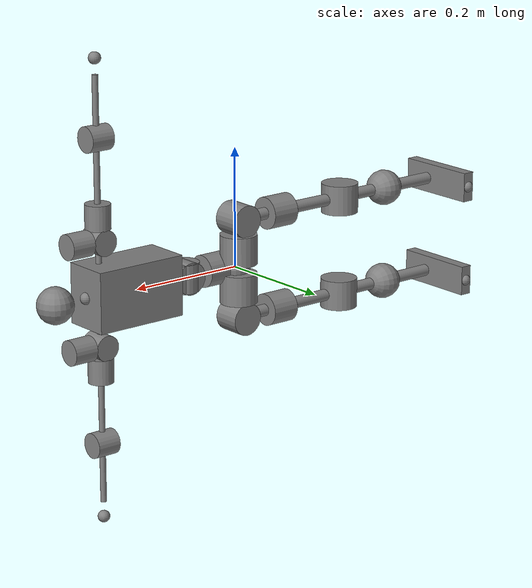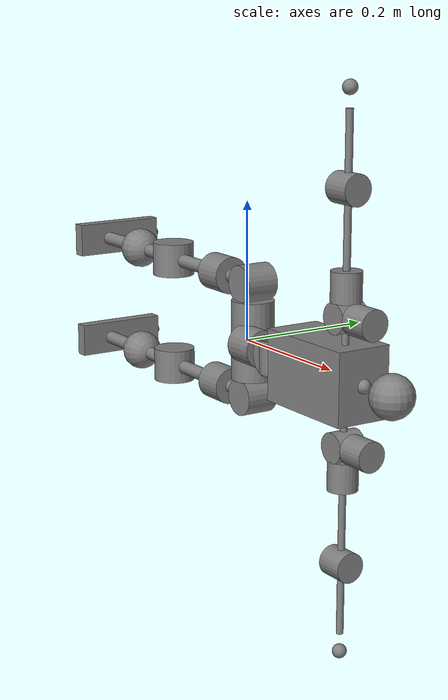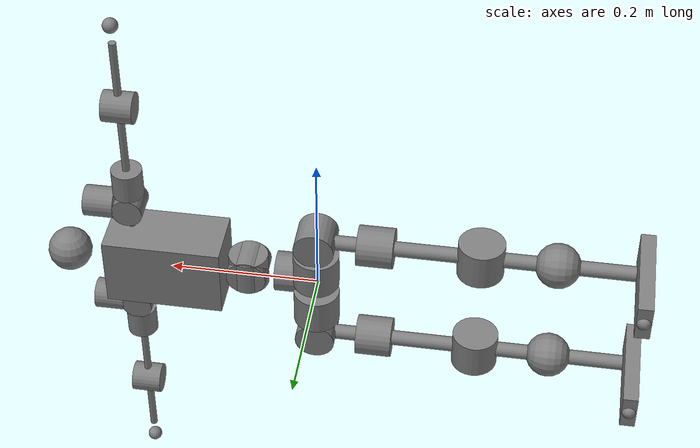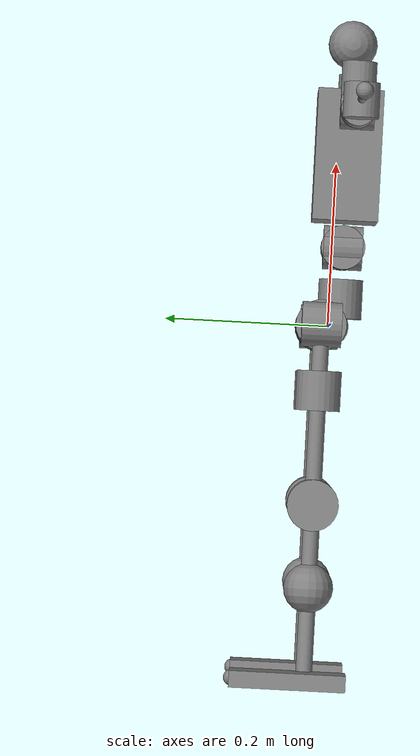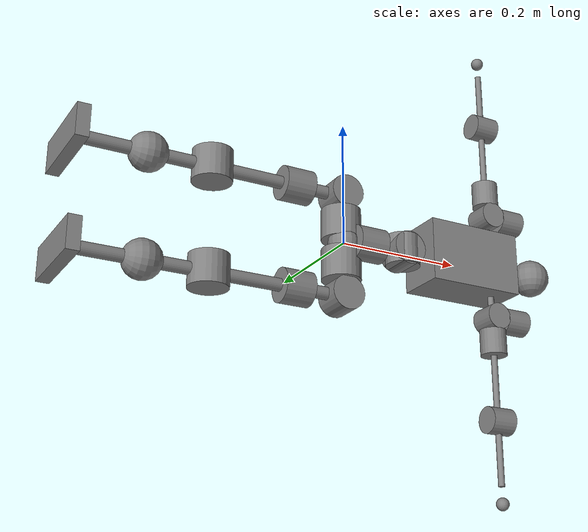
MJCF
<?xml version='1.0' encoding='utf-8'?>
<mujoco model="bvh_human_3dof_tpose">
  <compiler angle="radian" meshdir="meshes/" />
  <worldbody>
    <body name="Hips">
      <inertial pos="0 0 0" mass="0.1" diaginertia="2.5e-05 2.5e-05 2.5e-05" />
      <joint name="floating_base_joint" type="free" />
      <geom size="0.025" contype="1" conaffinity="1" group="1" density="0" name="Hips" />
      <geom size="0.025" name="Hips_geom1" />
      <geom size="0.025" name="Hips_geom2" />
      <body name="LeftUpLeg_rz" pos="0.00051729 0.0092891 0.0827425" quat="-2.32051e-08 0 0 -1">
        <inertial pos="0 0 -0.05" mass="0.5" diaginertia="0.0001922 0.0001922 0.0001922" />
        <joint name="Hips_to_LeftUpLeg_rz" pos="0 0 0" axis="0 0 1" range="-3.14159 3.14159" actuatorfrcrange="-55 55" />
        <geom size="0.031 0.025" pos="0 0 -0.05" type="cylinder" contype="1" conaffinity="1" group="1" density="0" name="LeftUpLeg_rz" />
        <geom size="0.031 0.025" pos="0 0 -0.05" type="cylinder" name="LeftUpLeg_rz_geom1" />
        <body name="LeftUpLeg_ry">
          <inertial pos="0 0 0" mass="0.4" diaginertia="0.00011664 0.00011664 0.00011664" />
          <joint name="LeftUpLeg_rz_to_LeftUpLeg_ry" pos="0 0 0" axis="0 1 0" range="-3.14159 3.14159" actuatorfrcrange="-25 25" />
          <geom size="0.027 0.024" quat="0.707107 -0.707107 0 0" type="cylinder" contype="1" conaffinity="1" group="1" density="0" name="LeftUpLeg_ry" />
          <geom size="0.027 0.024" quat="0.707107 -0.707107 0 0" type="cylinder" name="LeftUpLeg_ry_geom1" />
          <body name="LeftUpLeg" quat="-2.32051e-08 1 0 0">
            <inertial pos="0.08 0 0" mass="0.4" diaginertia="0.0016 0.0016 0.0016" />
            <joint name="LeftUpLeg_ry_to_LeftUpLeg" pos="0 0 0" axis="1 0 0" range="-3.14159 3.14159" actuatorfrcrange="-25 25" />
            <geom size="0.01 0.1" pos="0.1 0 0" quat="0.707388 0 0.706825 0" type="cylinder" contype="1" conaffinity="1" group="1" density="0" name="LeftUpLeg" />
            <geom size="0.027 0.024" pos="0.08 0 0" quat="0.707107 0 0.707107 0" type="cylinder" contype="1" conaffinity="1" group="1" density="0" name="LeftUpLeg_geom1" />
            <geom size="0.027 0.024" pos="0.08 0 0" quat="0.707107 0 0.707107 0" type="cylinder" name="LeftUpLeg_geom2" />
            <body name="LeftLeg_rz" pos="0.2175 -1e-07 1e-08">
              <inertial pos="0 0 0" mass="0.5" diaginertia="0.0001922 0.0001922 0.0001922" />
              <joint name="LeftUpLeg_to_LeftLeg_rz" pos="0 0 0" axis="0 0 1" range="-3.14159 3.14159" actuatorfrcrange="-55 55" />
              <geom size="0.031 0.025" type="cylinder" contype="1" conaffinity="1" group="1" density="0" name="LeftLeg_rz" />
              <geom size="0.031 0.025" type="cylinder" name="LeftLeg_rz_geom1" />
              <body name="LeftLeg_ry">
                <inertial pos="0 0 0" mass="0.01" diaginertia="4e-07 4e-07 4e-07" />
                <body name="LeftLeg">
                  <inertial pos="0.1 0 0" mass="0.8" diaginertia="0.0032 0.0032 0.0032" />
                  <geom size="0.01 0.1" pos="0.1 0 0" quat="0.707388 0 0.706825 0" type="cylinder" contype="1" conaffinity="1" group="1" density="0" name="LeftLeg" />
                  <geom size="0.03" pos="0.1 0 0" quat="0.707388 0 0.706825 0" contype="1" conaffinity="1" group="1" density="0" name="LeftLeg_geom1" />
                  <geom size="0.03" pos="0.1 0 0" quat="0.707388 0 0.706825 0" name="LeftLeg_geom2" />
                  <body name="LeftFoot_rz" pos="0.211861 -2e-08 1e-08" quat="0.707107 0 0 0.707107">
                    <inertial pos="0 0 0" mass="0.01" diaginertia="1.6e-06 1.6e-06 1.6e-06" />
                    <joint name="LeftLeg_to_LeftFoot_rz" pos="0 0 0" axis="0 0 1" range="-3.14159 3.14159" actuatorfrcrange="-50 50" />
                    <geom size="0.005 0.02" type="cylinder" contype="1" conaffinity="1" group="1" density="0" name="LeftFoot_rz" />
                    <body name="LeftFoot_ry">
                      <inertial pos="0 0 0" mass="0.01" diaginertia="4e-07 4e-07 4e-07" />
                      <body name="LeftFoot">
                        <inertial pos="0 0 0" mass="0.01" diaginertia="1.96e-05 1.96e-05 1.96e-05" />
                        <joint name="LeftFoot_ry_to_LeftFoot" pos="0 0 0" axis="1 0 0" range="-3.14159 3.14159" actuatorfrcrange="-50 50" />
                        <geom size="0.07 0.01 0.025" pos="0.02 0 0" type="box" contype="1" conaffinity="1" group="1" density="0" name="LeftFoot" />
                        <geom size="0.005 0.02" quat="0.707107 0 0.707107 0" type="cylinder" contype="1" conaffinity="1" group="1" density="0" name="LeftFoot_geom1" />
                        <geom size="0.07 0.01 0.025" pos="0.02 0 0" type="box" name="LeftFoot_geom2" />
                        <body name="LeftToe_rz" pos="0.0865 1e-08 3e-08">
                          <inertial pos="0 0 0" mass="0.01" diaginertia="4e-07 4e-07 4e-07" />
                          <body name="LeftToe_ry">
                            <inertial pos="0 0 0" mass="0.01" diaginertia="4e-07 4e-07 4e-07" />
                            <body name="LeftToe">
                              <inertial pos="0 0 0" mass="0.01" diaginertia="4e-07 4e-07 4e-07" />
                              <geom size="0.01" contype="1" conaffinity="1" group="1" density="0" name="LeftToe" />
                              <geom size="0.01" name="LeftToe_geom1" />
                              <body name="LeftToe_End">
                                <inertial pos="0 0 0" mass="0.01" diaginertia="4e-07 4e-07 4e-07" />
                                <geom size="0.01" contype="1" conaffinity="1" group="1" density="0" name="LeftToe_End" />
                                <geom size="0.01" name="LeftToe_End_geom1" />
                              </body>
                            </body>
                          </body>
                        </body>
                      </body>
                    </body>
                  </body>
                </body>
              </body>
            </body>
          </body>
        </body>
      </body>
      <body name="RightUpLeg_rz" pos="0.00051729 0.00928909 -0.0827425" quat="-2.32051e-08 0 0 -1">
        <inertial pos="0 0 0.05" mass="0.5" diaginertia="0.0001922 0.0001922 0.0001922" />
        <joint name="Hips_to_RightUpLeg_rz" pos="0 0 0" axis="0 0 1" range="-3.14159 3.14159" actuatorfrcrange="-100 100" />
        <geom size="0.031 0.025" pos="0 0 0.05" type="cylinder" contype="1" conaffinity="1" group="1" density="0" name="RightUpLeg_rz" />
        <geom size="0.031 0.025" pos="0 0 0.05" type="cylinder" name="RightUpLeg_rz_geom1" />
        <body name="RightUpLeg_ry">
          <inertial pos="0 0 0" mass="0.4" diaginertia="0.00011664 0.00011664 0.00011664" />
          <joint name="RightUpLeg_rz_to_RightUpLeg_ry" pos="0 0 0" axis="0 1 0" range="-3.14159 3.14159" actuatorfrcrange="-100 100" />
          <geom size="0.027 0.024" quat="0.707107 -0.707107 0 0" type="cylinder" contype="1" conaffinity="1" group="1" density="0" name="RightUpLeg_ry" />
          <geom size="0.027 0.024" quat="0.707107 -0.707107 0 0" type="cylinder" name="RightUpLeg_ry_geom1" />
          <body name="RightUpLeg" quat="-2.32051e-08 -1 0 0">
            <inertial pos="0.08 0 0" mass="0.4" diaginertia="0.0016 0.0016 0.0016" />
            <joint name="RightUpLeg_ry_to_RightUpLeg" pos="0 0 0" axis="1 0 0" range="-3.14159 3.14159" actuatorfrcrange="-100 100" />
            <geom size="0.01 0.1" pos="0.1 0 0" quat="0.707388 0 0.706825 0" type="cylinder" contype="1" conaffinity="1" group="1" density="0" name="RightUpLeg" />
            <geom size="0.027 0.024" pos="0.08 0 0" quat="0.707107 0 0.707107 0" type="cylinder" contype="1" conaffinity="1" group="1" density="0" name="RightUpLeg_geom1" />
            <geom size="0.027 0.024" pos="0.08 0 0" quat="0.707107 0 0.707107 0" type="cylinder" name="RightUpLeg_geom2" />
            <body name="RightLeg_rz" pos="0.2175 -7e-08 5e-08">
              <inertial pos="0 0 0" mass="0.5" diaginertia="0.0001922 0.0001922 0.0001922" />
              <joint name="RightUpLeg_to_RightLeg_rz" pos="0 0 0" axis="0 0 1" range="-3.14159 3.14159" actuatorfrcrange="-100 100" />
              <geom size="0.031 0.025" type="cylinder" contype="1" conaffinity="1" group="1" density="0" name="RightLeg_rz" />
              <geom size="0.031 0.025" type="cylinder" name="RightLeg_rz_geom1" />
              <body name="RightLeg_ry">
                <inertial pos="0 0 0" mass="0.01" diaginertia="4e-07 4e-07 4e-07" />
                <body name="RightLeg">
                  <inertial pos="0.1 0 0" mass="0.8" diaginertia="0.0032 0.0032 0.0032" />
                  <geom size="0.01 0.1" pos="0.1 0 0" quat="0.707388 0 0.706825 0" type="cylinder" contype="1" conaffinity="1" group="1" density="0" name="RightLeg" />
                  <geom size="0.03" pos="0.1 0 0" quat="0.707388 0 0.706825 0" contype="1" conaffinity="1" group="1" density="0" name="RightLeg_geom1" />
                  <geom size="0.03" pos="0.1 0 0" quat="0.707388 0 0.706825 0" name="RightLeg_geom2" />
                  <body name="RightFoot_rz" pos="0.211861 -4e-08 5e-08" quat="0.707107 0 0 0.707107">
                    <inertial pos="0 0 0" mass="0.01" diaginertia="1.6e-06 1.6e-06 1.6e-06" />
                    <joint name="RightLeg_to_RightFoot_rz" pos="0 0 0" axis="0 0 1" range="-3.14159 3.14159" actuatorfrcrange="-100 100" />
                    <geom size="0.005 0.02" type="cylinder" contype="1" conaffinity="1" group="1" density="0" name="RightFoot_rz" />
                    <body name="RightFoot_ry">
                      <inertial pos="0 0 0" mass="0.01" diaginertia="4e-07 4e-07 4e-07" />
                      <body name="RightFoot">
                        <inertial pos="0 0 0" mass="0.01" diaginertia="1.96e-05 1.96e-05 1.96e-05" />
                        <joint name="RightFoot_ry_to_RightFoot" pos="0 0 0" axis="1 0 0" range="-3.14159 3.14159" actuatorfrcrange="-100 100" />
                        <geom size="0.07 0.01 0.025" pos="0.02 0 0" type="box" contype="1" conaffinity="1" group="1" density="0" name="RightFoot" />
                        <geom size="0.005 0.02" quat="0.707107 0 0.707107 0" type="cylinder" contype="1" conaffinity="1" group="1" density="0" name="RightFoot_geom1" />
                        <geom size="0.07 0.01 0.025" pos="0.02 0 0" type="box" name="RightFoot_geom2" />
                        <body name="RightToe_rz" pos="0.0865 -2e-08 0">
                          <inertial pos="0 0 0" mass="0.01" diaginertia="4e-07 4e-07 4e-07" />
                          <body name="RightToe_ry">
                            <inertial pos="0 0 0" mass="0.01" diaginertia="4e-07 4e-07 4e-07" />
                            <body name="RightToe">
                              <inertial pos="0 0 0" mass="0.01" diaginertia="4e-07 4e-07 4e-07" />
                              <geom size="0.01" contype="1" conaffinity="1" group="1" density="0" name="RightToe" />
                              <geom size="0.01" name="RightToe_geom1" />
                              <body name="RightToe_End">
                                <inertial pos="0 0 0" mass="0.01" diaginertia="4e-07 4e-07 4e-07" />
                                <geom size="0.01" contype="1" conaffinity="1" group="1" density="0" name="RightToe_End" />
                                <geom size="0.01" name="RightToe_End_geom1" />
                              </body>
                            </body>
                          </body>
                        </body>
                      </body>
                    </body>
                  </body>
                </body>
              </body>
            </body>
          </body>
        </body>
      </body>
      <body name="Spine_rz" pos="0.0345098 -0.0130187 1e-08">
        <inertial pos="0 0 0" mass="0.01" diaginertia="4e-07 4e-07 4e-07" />
        <body name="Spine_ry">
          <inertial pos="0 0 0" mass="0.01" diaginertia="4e-07 4e-07 4e-07" />
          <body name="Spine">
            <inertial pos="0 0 0" mass="0.4" diaginertia="1.6e-05 1.6e-05 1.6e-05" />
            <joint name="Spine_ry_to_Spine" pos="0 0 0" axis="1 0 0" range="-3.14159 3.14159" actuatorfrcrange="-100 100" />
            <geom size="0.01" contype="1" conaffinity="1" group="1" density="0" name="Spine" />
            <geom size="0.027 0.024" quat="0.707107 0 0.707107 0" type="cylinder" contype="1" conaffinity="1" group="1" density="0" name="Spine_geom1" />
            <geom size="0.01" name="Spine_geom2" />
            <geom size="0.027 0.024" quat="0.707107 0 0.707107 0" type="cylinder" name="Spine_geom3" />
            <body name="Spine1_rz" pos="0.0629405 8e-08 -2e-08">
              <inertial pos="0 0 0" mass="0.4" diaginertia="0.00011664 0.00011664 0.00011664" />
              <joint name="Spine_to_Spine1_rz" pos="0 0 0" axis="0 0 1" range="-3.14159 3.14159" actuatorfrcrange="-100 100" />
              <geom size="0.027 0.024" type="cylinder" contype="1" conaffinity="1" group="1" density="0" name="Spine1_rz" />
              <geom size="0.027 0.024" type="cylinder" name="Spine1_rz_geom1" />
              <body name="Spine1_ry">
                <inertial pos="0 0 0" mass="0.4" diaginertia="0.00011664 0.00011664 0.00011664" />
                <joint name="Spine1_rz_to_Spine1_ry" pos="0 0 0" axis="0 1 0" range="-3.14159 3.14159" actuatorfrcrange="-100 100" />
                <geom size="0.027 0.024" quat="0.707107 -0.707107 0 0" type="cylinder" contype="1" conaffinity="1" group="1" density="0" name="Spine1_ry" />
                <geom size="0.027 0.024" quat="0.707107 -0.707107 0 0" type="cylinder" name="Spine1_ry_geom1" />
                <body name="Spine1">
                  <inertial pos="0 0 0" mass="0.01" diaginertia="4e-07 4e-07 4e-07" />
                  <geom size="0.01" contype="1" conaffinity="1" group="1" density="0" name="Spine1" />
                  <geom size="0.01" name="Spine1_geom1" />
                  <body name="Spine2_rz" pos="0.061716 -6e-08 -2e-08">
                    <inertial pos="0 0 0" mass="0.01" diaginertia="4e-07 4e-07 4e-07" />
                    <body name="Spine2_ry">
                      <inertial pos="0 0 0" mass="0.01" diaginertia="4e-07 4e-07 4e-07" />
                      <body name="Spine2">
                        <inertial pos="0.05 0 0" mass="2.01" diaginertia="2.56e-05 2.56e-05 2.56e-05" />
                        <geom size="0.05 0.04 0.08" pos="0.05 0 0" quat="0.707388 0 0.706825 0" type="box" contype="1" conaffinity="1" group="1" density="0" name="Spine2" />
                        <geom size="0.05 0.04 0.08" pos="0.05 0 0" quat="0.707388 0 0.706825 0" type="box" name="Spine2_geom1" />
                        <body name="Neck_rz" pos="0.129164 4e-08 3e-08">
                          <inertial pos="0 0 0" mass="0.01" diaginertia="4e-07 4e-07 4e-07" />
                          <body name="Neck_ry">
                            <inertial pos="0 0 0" mass="0.01" diaginertia="4e-07 4e-07 4e-07" />
                            <body name="Neck">
                              <inertial pos="0 0 0" mass="0.01" diaginertia="4e-07 4e-07 4e-07" />
                              <geom size="0.01" contype="1" conaffinity="1" group="1" density="0" name="Neck" />
                              <geom size="0.01" name="Neck_geom1" />
                              <body name="Head_rz" pos="0.0588331 -2e-08 -1e-08">
                                <inertial pos="0 0 0" mass="0.01" diaginertia="4e-07 4e-07 4e-07" />
                                <body name="Head_ry">
                                  <inertial pos="0 0 0" mass="0.01" diaginertia="4e-07 4e-07 4e-07" />
                                  <body name="Head">
                                    <inertial pos="0 0 0" mass="0.01" diaginertia="3.6e-06 3.6e-06 3.6e-06" />
                                    <geom size="0.03" contype="1" conaffinity="1" group="1" density="0" name="Head" />
                                    <geom size="0.03" name="Head_geom1" />
                                    <body name="Head_End">
                                      <inertial pos="0 0 0" mass="0.01" diaginertia="4e-07 4e-07 4e-07" />
                                      <geom size="0.01" contype="1" conaffinity="1" group="1" density="0" name="Head_End" />
                                      <geom size="0.01" name="Head_End_geom1" />
                                    </body>
                                  </body>
                                </body>
                              </body>
                            </body>
                          </body>
                        </body>
                        <body name="LeftShoulder_rz" pos="0.0987295 -0.00740185 0.0300006" quat="0.707107 0 0 -0.707107">
                          <inertial pos="0 0 0" mass="0.01" diaginertia="4e-07 4e-07 4e-07" />
                          <body name="LeftShoulder_ry" quat="0.707107 0 -0.707107 0">
                            <inertial pos="0 0 0" mass="0.01" diaginertia="4e-07 4e-07 4e-07" />
                            <body name="LeftShoulder" quat="0.707107 -0.707107 0 0">
                              <inertial pos="0 0 0" mass="0.01" diaginertia="2.5e-06 2.5e-06 2.5e-06" />
                              <geom size="0.005 0.025" pos="0.025 0 0" quat="0.707388 0 0.706825 0" type="cylinder" contype="1" conaffinity="1" group="1" density="0" name="LeftShoulder" />
                              <body name="LeftArm_rz" pos="0.0564206 -6e-08 -4e-08">
                                <inertial pos="0 0 0.04" mass="0.3" diaginertia="5.292e-05 5.292e-05 5.292e-05" />
                                <joint name="LeftShoulder_to_LeftArm_rz" pos="0 0 0" axis="0 0 1" range="-3.14159 3.14159" actuatorfrcrange="-100 100" />
                                <geom size="0.021 0.0205" pos="0 0 0.04" type="cylinder" contype="1" conaffinity="1" group="1" density="0" name="LeftArm_rz" />
                                <geom size="0.021 0.0205" pos="0 0 0.04" type="cylinder" name="LeftArm_rz_geom1" />
                                <body name="LeftArm_ry">
                                  <inertial pos="0 0 0" mass="0.3" diaginertia="5.292e-05 5.292e-05 5.292e-05" />
                                  <joint name="LeftArm_rz_to_LeftArm_ry" pos="0 0 0" axis="0 1 0" range="-3.14159 3.14159" actuatorfrcrange="-100 100" />
                                  <geom size="0.021 0.0205" quat="0.707107 -0.707107 0 0" type="cylinder" contype="1" conaffinity="1" group="1" density="0" name="LeftArm_ry" />
                                  <geom size="0.021 0.0205" quat="0.707107 -0.707107 0 0" type="cylinder" name="LeftArm_ry_geom1" />
                                  <body name="LeftArm">
                                    <inertial pos="0.04 0 0" mass="0.3" diaginertia="0.000675 0.000675 0.000675" />
                                    <joint name="LeftArm_ry_to_LeftArm" pos="0 0 0" axis="1 0 0" range="-3.14159 3.14159" actuatorfrcrange="-100 100" />
                                    <geom size="0.005 0.075" pos="0.075 0 0" quat="0.707388 0 0.706825 0" type="cylinder" contype="1" conaffinity="1" group="1" density="0" name="LeftArm" />
                                    <geom size="0.021 0.0205" pos="0.04 0 0" quat="0.707107 0 0.707107 0" type="cylinder" contype="1" conaffinity="1" group="1" density="0" name="LeftArm_geom1" />
                                    <geom size="0.021 0.0205" pos="0.04 0 0" quat="0.707107 0 0.707107 0" type="cylinder" name="LeftArm_geom2" />
                                    <body name="LeftForeArm_rz" pos="0.165 1e-08 1.1e-07">
                                      <inertial pos="0 0 0" mass="0.3" diaginertia="5.292e-05 5.292e-05 5.292e-05" />
                                      <joint name="LeftArm_to_LeftForeArm_rz" pos="0 0 0" axis="0 0 1" range="-3.14159 3.14159" actuatorfrcrange="-100 100" />
                                      <geom size="0.021 0.0205" type="cylinder" contype="1" conaffinity="1" group="1" density="0" name="LeftForeArm_rz" />
                                      <geom size="0.021 0.0205" type="cylinder" name="LeftForeArm_rz_geom1" />
                                      <body name="LeftForeArm_ry">
                                        <inertial pos="0 0 0" mass="0.01" diaginertia="4e-07 4e-07 4e-07" />
                                        <body name="LeftForeArm">
                                          <inertial pos="0 0 0" mass="0.01" diaginertia="1e-05 1e-05 1e-05" />
                                          <geom size="0.005 0.05" pos="0.05 0 0" quat="0.707388 0 0.706825 0" type="cylinder" contype="1" conaffinity="1" group="1" density="0" name="LeftForeArm" />
                                          <body name="LeftHand_rz" pos="0.126 3e-08 7e-08">
                                            <inertial pos="0 0 0" mass="0.01" diaginertia="4e-07 4e-07 4e-07" />
                                            <body name="LeftHand_ry">
                                              <inertial pos="0 0 0" mass="0.01" diaginertia="4e-07 4e-07 4e-07" />
                                              <body name="LeftHand">
                                                <inertial pos="0 0 0" mass="0.01" diaginertia="4e-07 4e-07 4e-07" />
                                                <geom size="0.01" contype="1" conaffinity="1" group="1" density="0" name="LeftHand" />
                                                <geom size="0.01" name="LeftHand_geom1" />
                                                <body name="LeftHand_End">
                                                  <inertial pos="0 0 0" mass="0.01" diaginertia="4e-07 4e-07 4e-07" />
                                                  <geom size="0.01" contype="1" conaffinity="1" group="1" density="0" name="LeftHand_End" />
                                                  <geom size="0.01" name="LeftHand_End_geom1" />
                                                </body>
                                              </body>
                                            </body>
                                          </body>
                                        </body>
                                      </body>
                                    </body>
                                  </body>
                                </body>
                              </body>
                            </body>
                          </body>
                        </body>
                        <body name="RightShoulder_rz" pos="0.0987305 -0.00740189 -0.0300003" quat="0.707107 0 0 0.707107">
                          <inertial pos="0 0 0" mass="0.01" diaginertia="4e-07 4e-07 4e-07" />
                          <body name="RightShoulder_ry" quat="0.707107 0 0.707107 0">
                            <inertial pos="0 0 0" mass="0.01" diaginertia="4e-07 4e-07 4e-07" />
                            <body name="RightShoulder" quat="0.707107 -0.707107 0 0">
                              <inertial pos="0 0 0" mass="0.01" diaginertia="2.5e-06 2.5e-06 2.5e-06" />
                              <geom size="0.005 0.025" pos="0.025 0 0" quat="0.707388 0 0.706825 0" type="cylinder" contype="1" conaffinity="1" group="1" density="0" name="RightShoulder" />
                              <body name="RightArm_rz" pos="0.0564207 -1.7e-07 -4e-08">
                                <inertial pos="0 0 -0.04" mass="0.3" diaginertia="5.292e-05 5.292e-05 5.292e-05" />
                                <joint name="RightShoulder_to_RightArm_rz" pos="0 0 0" axis="0 0 1" range="-3.14159 3.14159" actuatorfrcrange="-100 100" />
                                <geom size="0.021 0.0205" pos="0 0 -0.04" type="cylinder" contype="1" conaffinity="1" group="1" density="0" name="RightArm_rz" />
                                <geom size="0.021 0.0205" pos="0 0 -0.04" type="cylinder" name="RightArm_rz_geom1" />
                                <body name="RightArm_ry">
                                  <inertial pos="0 0 0" mass="0.3" diaginertia="5.292e-05 5.292e-05 5.292e-05" />
                                  <joint name="RightArm_rz_to_RightArm_ry" pos="0 0 0" axis="0 1 0" range="-3.14159 3.14159" actuatorfrcrange="-100 100" />
                                  <geom size="0.021 0.0205" quat="0.707107 -0.707107 0 0" type="cylinder" contype="1" conaffinity="1" group="1" density="0" name="RightArm_ry" />
                                  <geom size="0.021 0.0205" quat="0.707107 -0.707107 0 0" type="cylinder" name="RightArm_ry_geom1" />
                                  <body name="RightArm">
                                    <inertial pos="0.04 0 0" mass="0.3" diaginertia="0.000675 0.000675 0.000675" />
                                    <joint name="RightArm_ry_to_RightArm" pos="0 0 0" axis="1 0 0" range="-3.14159 3.14159" actuatorfrcrange="-100 100" />
                                    <geom size="0.005 0.075" pos="0.075 0 0" quat="0.707388 0 0.706825 0" type="cylinder" contype="1" conaffinity="1" group="1" density="0" name="RightArm" />
                                    <geom size="0.021 0.0205" pos="0.04 0 0" quat="0.707107 0 0.707107 0" type="cylinder" contype="1" conaffinity="1" group="1" density="0" name="RightArm_geom1" />
                                    <geom size="0.021 0.0205" pos="0.04 0 0" quat="0.707107 0 0.707107 0" type="cylinder" name="RightArm_geom2" />
                                    <body name="RightForeArm_rz" pos="0.165 1e-07 3e-08">
                                      <inertial pos="0 0 0" mass="0.3" diaginertia="5.292e-05 5.292e-05 5.292e-05" />
                                      <joint name="RightArm_to_RightForeArm_rz" pos="0 0 0" axis="0 0 1" range="-3.14159 3.14159" actuatorfrcrange="-100 100" />
                                      <geom size="0.021 0.0205" type="cylinder" contype="1" conaffinity="1" group="1" density="0" name="RightForeArm_rz" />
                                      <geom size="0.021 0.0205" type="cylinder" name="RightForeArm_rz_geom1" />
                                      <body name="RightForeArm_ry">
                                        <inertial pos="0 0 0" mass="0.01" diaginertia="4e-07 4e-07 4e-07" />
                                        <body name="RightForeArm">
                                          <inertial pos="0 0 0" mass="0.01" diaginertia="1e-05 1e-05 1e-05" />
                                          <geom size="0.005 0.05" pos="0.05 0 0" quat="0.707388 0 0.706825 0" type="cylinder" contype="1" conaffinity="1" group="1" density="0" name="RightForeArm" />
                                          <body name="RightHand_rz" pos="0.125999 7e-07 2.16e-06">
                                            <inertial pos="0 0 0" mass="0.01" diaginertia="4e-07 4e-07 4e-07" />
                                            <body name="RightHand_ry">
                                              <inertial pos="0 0 0" mass="0.01" diaginertia="4e-07 4e-07 4e-07" />
                                              <body name="RightHand">
                                                <inertial pos="0 0 0" mass="0.01" diaginertia="4e-07 4e-07 4e-07" />
                                                <geom size="0.01" contype="1" conaffinity="1" group="1" density="0" name="RightHand" />
                                                <geom size="0.01" name="RightHand_geom1" />
                                                <body name="RightHand_End">
                                                  <inertial pos="0 0 0" mass="0.01" diaginertia="4e-07 4e-07 4e-07" />
                                                  <geom size="0.01" contype="1" conaffinity="1" group="1" density="0" name="RightHand_End" />
                                                  <geom size="0.01" name="RightHand_End_geom1" />
                                                </body>
                                              </body>
                                            </body>
                                          </body>
                                        </body>
                                      </body>
                                    </body>
                                  </body>
                                </body>
                              </body>
                            </body>
                          </body>
                        </body>
                      </body>
                    </body>
                  </body>
                </body>
              </body>
            </body>
          </body>
        </body>
      </body>
    </body>
  </worldbody>
  <actuator>
    <motor name="Hips_to_LeftUpLeg_rz" joint="Hips_to_LeftUpLeg_rz" gear="1" ctrlrange="-1 1" />
    <motor name="LeftUpLeg_rz_to_LeftUpLeg_ry" joint="LeftUpLeg_rz_to_LeftUpLeg_ry" gear="1" ctrlrange="-1 1" />
    <motor name="LeftUpLeg_ry_to_LeftUpLeg" joint="LeftUpLeg_ry_to_LeftUpLeg" gear="1" ctrlrange="-1 1" />
    <motor name="LeftUpLeg_to_LeftLeg_rz" joint="LeftUpLeg_to_LeftLeg_rz" gear="1" ctrlrange="-1 1" />
    <motor name="LeftLeg_to_LeftFoot_rz" joint="LeftLeg_to_LeftFoot_rz" gear="1" ctrlrange="-1 1" />
    <motor name="LeftFoot_ry_to_LeftFoot" joint="LeftFoot_ry_to_LeftFoot" gear="1" ctrlrange="-1 1" />
    <motor name="Hips_to_RightUpLeg_rz" joint="Hips_to_RightUpLeg_rz" gear="1" ctrlrange="-1 1" />
    <motor name="RightUpLeg_rz_to_RightUpLeg_ry" joint="RightUpLeg_rz_to_RightUpLeg_ry" gear="1" ctrlrange="-1 1" />
    <motor name="RightUpLeg_ry_to_RightUpLeg" joint="RightUpLeg_ry_to_RightUpLeg" gear="1" ctrlrange="-1 1" />
    <motor name="RightUpLeg_to_RightLeg_rz" joint="RightUpLeg_to_RightLeg_rz" gear="1" ctrlrange="-1 1" />
    <motor name="RightLeg_to_RightFoot_rz" joint="RightLeg_to_RightFoot_rz" gear="1" ctrlrange="-1 1" />
    <motor name="RightFoot_ry_to_RightFoot" joint="RightFoot_ry_to_RightFoot" gear="1" ctrlrange="-1 1" />
    <motor name="Spine_ry_to_Spine" joint="Spine_ry_to_Spine" gear="1" ctrlrange="-1 1" />
    <motor name="Spine_to_Spine1_rz" joint="Spine_to_Spine1_rz" gear="1" ctrlrange="-1 1" />
    <motor name="Spine1_rz_to_Spine1_ry" joint="Spine1_rz_to_Spine1_ry" gear="1" ctrlrange="-1 1" />
    <motor name="LeftShoulder_to_LeftArm_rz" joint="LeftShoulder_to_LeftArm_rz" gear="1" ctrlrange="-1 1" />
    <motor name="LeftArm_rz_to_LeftArm_ry" joint="LeftArm_rz_to_LeftArm_ry" gear="1" ctrlrange="-1 1" />
    <motor name="LeftArm_ry_to_LeftArm" joint="LeftArm_ry_to_LeftArm" gear="1" ctrlrange="-1 1" />
    <motor name="LeftArm_to_LeftForeArm_rz" joint="LeftArm_to_LeftForeArm_rz" gear="1" ctrlrange="-1 1" />
    <motor name="RightShoulder_to_RightArm_rz" joint="RightShoulder_to_RightArm_rz" gear="1" ctrlrange="-1 1" />
    <motor name="RightArm_rz_to_RightArm_ry" joint="RightArm_rz_to_RightArm_ry" gear="1" ctrlrange="-1 1" />
    <motor name="RightArm_ry_to_RightArm" joint="RightArm_ry_to_RightArm" gear="1" ctrlrange="-1 1" />
    <motor name="RightArm_to_RightForeArm_rz" joint="RightArm_to_RightForeArm_rz" gear="1" ctrlrange="-1 1" />
  </actuator>
</mujoco>
